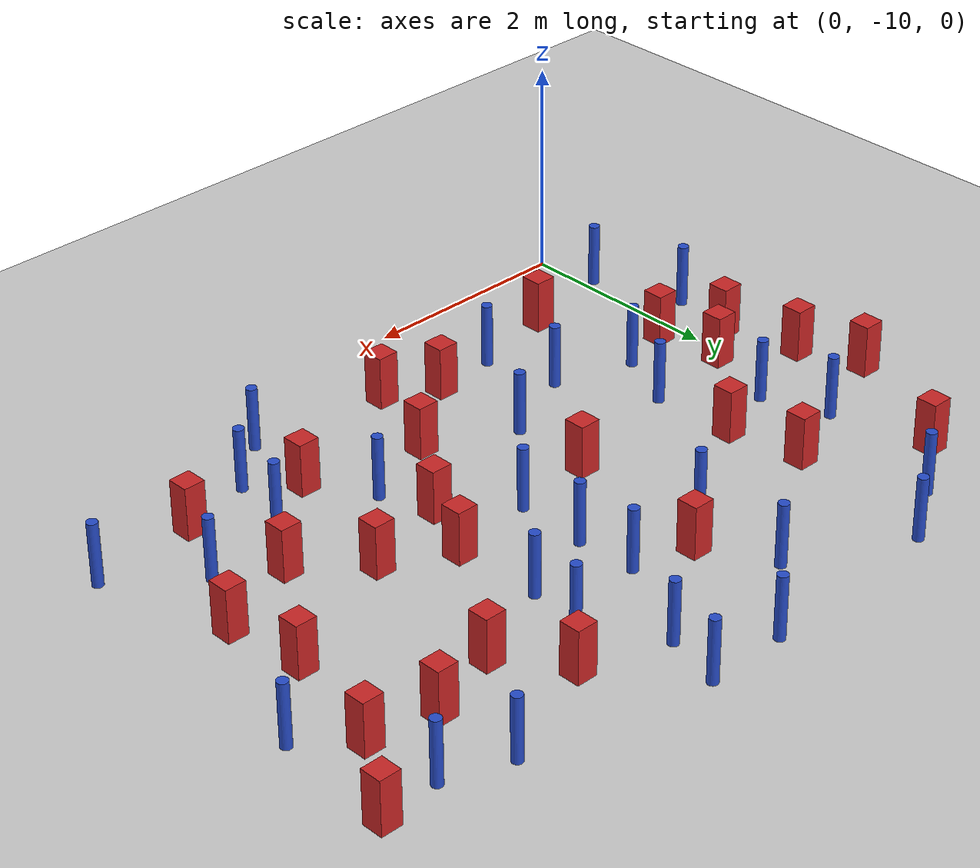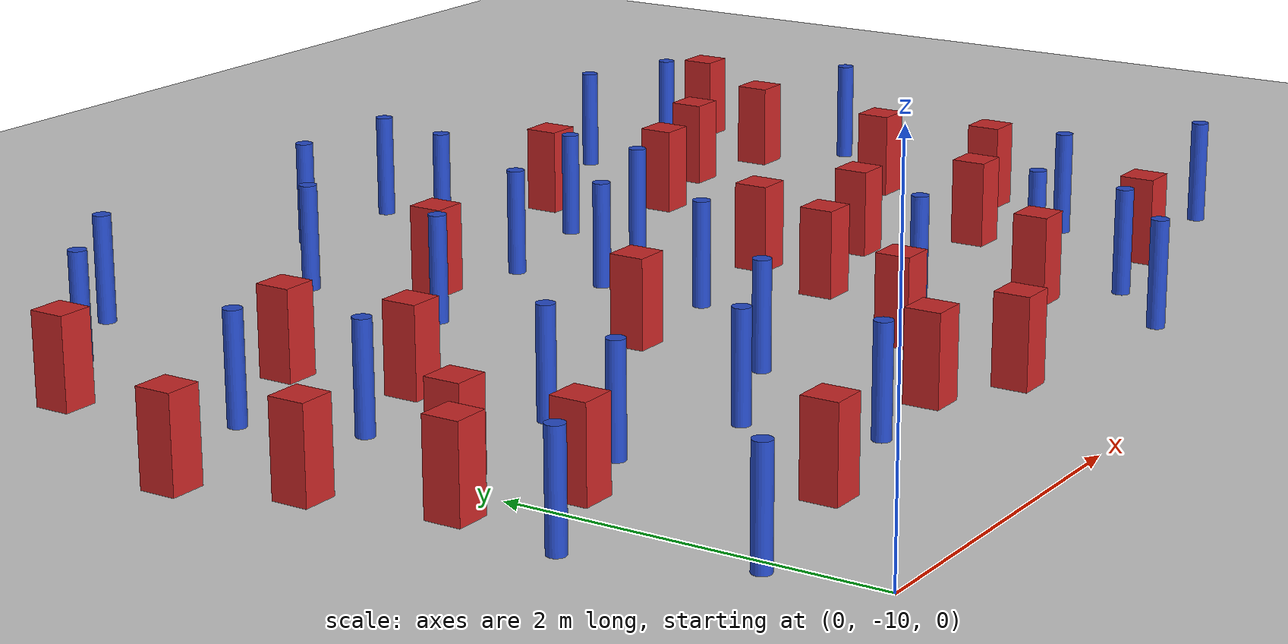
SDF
<sdf version="1.6">
 <world name="default">
  <model name="ground_plane">
   <static>1</static>
   <link name="link">
    <collision name="collision">
     <geometry><plane><normal>0 0 1</normal><size>100 100</size></plane></geometry>
     <surface><friction><ode><mu>100</mu><mu2>50</mu2></ode></friction></surface>
    </collision>
    <visual name="visual">
     <cast_shadows>0</cast_shadows>
     <geometry><plane><normal>0 0 1</normal><size>100 100</size></plane></geometry>
     <material>
      <ambient>1.0 1.0 1.0 1.0</ambient>
      <diffuse>0.8 0.8 0.8 1.0</diffuse>
      <specular>0.01 0.01 0.01 1.000000</specular>
     </material>
    </visual>
   </link>
  </model>
  <model name="square_post_obstacle3">
   <static>true</static>
   <pose>3.03924408986 -8.36852903713 8.22691968438e-08 7.22125133819e-06 -7.54495500217e-07 2.29674213826e-05</pose>
   <link name="link">
    <pose>0 0 0.25 0 -0 0</pose>
    <inertial>
     <mass>100</mass>
     <inertia>
      <ixx>0.166667</ixx>
      <ixy>0</ixy>
      <ixz>0</ixz>
      <iyy>0.166667</iyy>
      <iyz>0</iyz>
      <izz>0.166667</izz>
     </inertia>
    </inertial>
    <collision name="collision"><geometry><box><size>.2 .2 .5</size></box></geometry></collision>
    <visual name="visual">
     <geometry><box><size>.2 .2 .5</size></box></geometry>
     <material>
      <script><name>Gazebo/Red</name><uri>file://media/materials/scripts/gazebo.material</uri></script>
     </material>
    </visual>
   </link>
  </model>
  <model name="pole_obstacle4">
   <static>true</static>
   <pose>6.17533117742 -8.70427358856 2.88873142074e-08 -9.9053668967e-09 4.60219948993e-07 -1.20965994957e-07</pose>
   <link name="link">
    <pose>0 0 0.3 0 -0 0</pose>
    <inertial>
     <mass>1</mass>
     <inertia><ixx>0.145833</ixx><ixy>0</ixy><ixz>0</ixz><iyy>0.145833</iyy><iyz>0</iyz><izz>0.125</izz></inertia>
    </inertial>
    <collision name="collision">
     <geometry><cylinder><radius>0.05</radius><length>.6</length></cylinder></geometry>
    </collision>
    <visual name="visual">
     <geometry><cylinder><radius>0.05</radius><length>.6</length></cylinder></geometry>
     <material>
      <script><name>Gazebo/Blue</name><uri>file://media/materials/scripts/gazebo.material</uri></script>
     </material>
    </visual>
   </link>
  </model>
  <model name="square_post_obstacle22">
   <static>true</static>
   <pose>3.87121906777 -7.00000814342 8.22691968438e-08 7.2212513382e-06 -7.54495500217e-07 2.29674213826e-05</pose>
   <link name="link">
    <pose>0 0 0.25 0 -0 0</pose>
    <inertial>
     <mass>100</mass>
     <inertia>
      <ixx>0.166667</ixx>
      <ixy>0</ixy>
      <ixz>0</ixz>
      <iyy>0.166667</iyy>
      <iyz>0</iyz>
      <izz>0.166667</izz>
     </inertia>
    </inertial>
    <collision name="collision"><geometry><box><size>.2 .2 .5</size></box></geometry></collision>
    <visual name="visual">
     <geometry><box><size>.2 .2 .5</size></box></geometry>
     <material>
      <script><name>Gazebo/Red</name><uri>file://media/materials/scripts/gazebo.material</uri></script>
     </material>
    </visual>
   </link>
  </model>
  <model name="pole_obstacle20">
   <static>true</static>
   <pose>1.00768726413 -7.52704603365 2.88873142074e-08 -9.90536689905e-09 4.60219948988e-07 -1.20965994961e-07</pose>
   <link name="link">
    <pose>0 0 0.3 0 -0 0</pose>
    <inertial>
     <mass>1</mass>
     <inertia><ixx>0.145833</ixx><ixy>0</ixy><ixz>0</ixz><iyy>0.145833</iyy><iyz>0</iyz><izz>0.125</izz></inertia>
    </inertial>
    <collision name="collision">
     <geometry><cylinder><radius>0.05</radius><length>.6</length></cylinder></geometry>
    </collision>
    <visual name="visual">
     <geometry><cylinder><radius>0.05</radius><length>.6</length></cylinder></geometry>
     <material>
      <script><name>Gazebo/Blue</name><uri>file://media/materials/scripts/gazebo.material</uri></script>
     </material>
    </visual>
   </link>
  </model>
  <model name="pole_obstacle24">
   <static>true</static>
   <pose>1.46840488879 -8.35134403687 2.88873142074e-08 -9.90536690474e-09 4.60219948974e-07 -1.2096599497e-07</pose>
   <link name="link">
    <pose>0 0 0.3 0 -0 0</pose>
    <inertial>
     <mass>1</mass>
     <inertia><ixx>0.145833</ixx><ixy>0</ixy><ixz>0</ixz><iyy>0.145833</iyy><iyz>0</iyz><izz>0.125</izz></inertia>
    </inertial>
    <collision name="collision">
     <geometry><cylinder><radius>0.05</radius><length>.6</length></cylinder></geometry>
    </collision>
    <visual name="visual">
     <geometry><cylinder><radius>0.05</radius><length>.6</length></cylinder></geometry>
     <material>
      <script><name>Gazebo/Blue</name><uri>file://media/materials/scripts/gazebo.material</uri></script>
     </material>
    </visual>
   </link>
  </model>
  <model name="pole_obstacle33">
   <static>true</static>
   <pose>2.13817950077 -5.12578874878 2.88873142074e-08 -9.90536689859e-09 4.60219948989e-07 -1.20965994961e-07</pose>
   <link name="link">
    <pose>0 0 0.3 0 -0 0</pose>
    <inertial>
     <mass>1</mass>
     <inertia><ixx>0.145833</ixx><ixy>0</ixy><ixz>0</ixz><iyy>0.145833</iyy><iyz>0</iyz><izz>0.125</izz></inertia>
    </inertial>
    <collision name="collision">
     <geometry><cylinder><radius>0.05</radius><length>.6</length></cylinder></geometry>
    </collision>
    <visual name="visual">
     <geometry><cylinder><radius>0.05</radius><length>.6</length></cylinder></geometry>
     <material>
      <script><name>Gazebo/Blue</name><uri>file://media/materials/scripts/gazebo.material</uri></script>
     </material>
    </visual>
   </link>
  </model>
  <model name="square_post_obstacle37">
   <static>true</static>
   <pose>6.00536220626 -5.7125130079 8.22691968438e-08 7.22125133819e-06 -7.54495500217e-07 2.29674213826e-05</pose>
   <link name="link">
    <pose>0 0 0.25 0 -0 0</pose>
    <inertial>
     <mass>100</mass>
     <inertia>
      <ixx>0.166667</ixx>
      <ixy>0</ixy>
      <ixz>0</ixz>
      <iyy>0.166667</iyy>
      <iyz>0</iyz>
      <izz>0.166667</izz>
     </inertia>
    </inertial>
    <collision name="collision"><geometry><box><size>.2 .2 .5</size></box></geometry></collision>
    <visual name="visual">
     <geometry><box><size>.2 .2 .5</size></box></geometry>
     <material>
      <script><name>Gazebo/Red</name><uri>file://media/materials/scripts/gazebo.material</uri></script>
     </material>
    </visual>
   </link>
  </model>
  <model name="square_post_obstacle39">
   <static>true</static>
   <pose>5.3751287836 -5.60700710761 8.22691968438e-08 7.2212513382e-06 -7.54495500217e-07 2.29674213826e-05</pose>
   <link name="link">
    <pose>0 0 0.25 0 -0 0</pose>
    <inertial>
     <mass>100</mass>
     <inertia>
      <ixx>0.166667</ixx>
      <ixy>0</ixy>
      <ixz>0</ixz>
      <iyy>0.166667</iyy>
      <iyz>0</iyz>
      <izz>0.166667</izz>
     </inertia>
    </inertial>
    <collision name="collision"><geometry><box><size>.2 .2 .5</size></box></geometry></collision>
    <visual name="visual">
     <geometry><box><size>.2 .2 .5</size></box></geometry>
     <material>
      <script><name>Gazebo/Red</name><uri>file://media/materials/scripts/gazebo.material</uri></script>
     </material>
    </visual>
   </link>
  </model>
  <model name="pole_obstacle42">
   <static>true</static>
   <pose>1.64181586977 -9.03019632135 2.88873142074e-08 -9.90536690474e-09 4.60219948974e-07 -1.2096599497e-07</pose>
   <link name="link">
    <pose>0 0 0.3 0 -0 0</pose>
    <inertial>
     <mass>1</mass>
     <inertia><ixx>0.145833</ixx><ixy>0</ixy><ixz>0</ixz><iyy>0.145833</iyy><iyz>0</iyz><izz>0.125</izz></inertia>
    </inertial>
    <collision name="collision">
     <geometry><cylinder><radius>0.05</radius><length>.6</length></cylinder></geometry>
    </collision>
    <visual name="visual">
     <geometry><cylinder><radius>0.05</radius><length>.6</length></cylinder></geometry>
     <material>
      <script><name>Gazebo/Blue</name><uri>file://media/materials/scripts/gazebo.material</uri></script>
     </material>
    </visual>
   </link>
  </model>
  <model name="pole_obstacle45">
   <static>true</static>
   <pose>2.02770374783 -6.10496417202 2.88873142074e-08 -9.90536689932e-09 4.60219948987e-07 -1.20965994962e-07</pose>
   <link name="link">
    <pose>0 0 0.3 0 -0 0</pose>
    <inertial>
     <mass>1</mass>
     <inertia><ixx>0.145833</ixx><ixy>0</ixy><ixz>0</ixz><iyy>0.145833</iyy><iyz>0</iyz><izz>0.125</izz></inertia>
    </inertial>
    <collision name="collision">
     <geometry><cylinder><radius>0.05</radius><length>.6</length></cylinder></geometry>
    </collision>
    <visual name="visual">
     <geometry><cylinder><radius>0.05</radius><length>.6</length></cylinder></geometry>
     <material>
      <script><name>Gazebo/Blue</name><uri>file://media/materials/scripts/gazebo.material</uri></script>
     </material>
    </visual>
   </link>
  </model>
  <model name="square_post_obstacle44">
   <static>true</static>
   <pose>2.26150238405 -8.96020316031 8.22691968438e-08 7.22125133819e-06 -7.54495500217e-07 2.29674213826e-05</pose>
   <link name="link">
    <pose>0 0 0.25 0 -0 0</pose>
    <inertial>
     <mass>100</mass>
     <inertia>
      <ixx>0.166667</ixx>
      <ixy>0</ixy>
      <ixz>0</ixz>
      <iyy>0.166667</iyy>
      <iyz>0</iyz>
      <izz>0.166667</izz>
     </inertia>
    </inertial>
    <collision name="collision"><geometry><box><size>.2 .2 .5</size></box></geometry></collision>
    <visual name="visual">
     <geometry><box><size>.2 .2 .5</size></box></geometry>
     <material>
      <script><name>Gazebo/Red</name><uri>file://media/materials/scripts/gazebo.material</uri></script>
     </material>
    </visual>
   </link>
  </model>
  <model name="pole_obstacle54">
   <static>true</static>
   <pose>3.88679253072 -5.6816226948 2.88873142074e-08 -9.90536689859e-09 4.60219948989e-07 -1.20965994961e-07</pose>
   <link name="link">
    <pose>0 0 0.3 0 -0 0</pose>
    <inertial>
     <mass>1</mass>
     <inertia><ixx>0.145833</ixx><ixy>0</ixy><ixz>0</ixz><iyy>0.145833</iyy><iyz>0</iyz><izz>0.125</izz></inertia>
    </inertial>
    <collision name="collision">
     <geometry><cylinder><radius>0.05</radius><length>.6</length></cylinder></geometry>
    </collision>
    <visual name="visual">
     <geometry><cylinder><radius>0.05</radius><length>.6</length></cylinder></geometry>
     <material>
      <script><name>Gazebo/Blue</name><uri>file://media/materials/scripts/gazebo.material</uri></script>
     </material>
    </visual>
   </link>
  </model>
  <model name="square_post_obstacle60">
   <static>true</static>
   <pose>2.73865519787 -9.20706449146 8.22691968438e-08 7.22125133819e-06 -7.54495500217e-07 2.29674213826e-05</pose>
   <link name="link">
    <pose>0 0 0.25 0 -0 0</pose>
    <inertial>
     <mass>100</mass>
     <inertia>
      <ixx>0.166667</ixx>
      <ixy>0</ixy>
      <ixz>0</ixz>
      <iyy>0.166667</iyy>
      <iyz>0</iyz>
      <izz>0.166667</izz>
     </inertia>
    </inertial>
    <collision name="collision"><geometry><box><size>.2 .2 .5</size></box></geometry></collision>
    <visual name="visual">
     <geometry><box><size>.2 .2 .5</size></box></geometry>
     <material>
      <script><name>Gazebo/Red</name><uri>file://media/materials/scripts/gazebo.material</uri></script>
     </material>
    </visual>
   </link>
  </model>
  <model name="pole_obstacle56">
   <static>true</static>
   <pose>4.49932723782 -8.97264514142 2.88873142074e-08 -9.9053668967e-09 4.60219948993e-07 -1.20965994957e-07</pose>
   <link name="link">
    <pose>0 0 0.3 0 -0 0</pose>
    <inertial>
     <mass>1</mass>
     <inertia><ixx>0.145833</ixx><ixy>0</ixy><ixz>0</ixz><iyy>0.145833</iyy><iyz>0</iyz><izz>0.125</izz></inertia>
    </inertial>
    <collision name="collision">
     <geometry><cylinder><radius>0.05</radius><length>.6</length></cylinder></geometry>
    </collision>
    <visual name="visual">
     <geometry><cylinder><radius>0.05</radius><length>.6</length></cylinder></geometry>
     <material>
      <script><name>Gazebo/Blue</name><uri>file://media/materials/scripts/gazebo.material</uri></script>
     </material>
    </visual>
   </link>
  </model>
  <model name="pole_obstacle61">
   <static>true</static>
   <pose>3.0576063091 -6.46515845533 2.88873142074e-08 -9.90536689859e-09 4.60219948989e-07 -1.20965994961e-07</pose>
   <link name="link">
    <pose>0 0 0.3 0 -0 0</pose>
    <inertial>
     <mass>1</mass>
     <inertia><ixx>0.145833</ixx><ixy>0</ixy><ixz>0</ixz><iyy>0.145833</iyy><iyz>0</iyz><izz>0.125</izz></inertia>
    </inertial>
    <collision name="collision">
     <geometry><cylinder><radius>0.05</radius><length>.6</length></cylinder></geometry>
    </collision>
    <visual name="visual">
     <geometry><cylinder><radius>0.05</radius><length>.6</length></cylinder></geometry>
     <material>
      <script><name>Gazebo/Blue</name><uri>file://media/materials/scripts/gazebo.material</uri></script>
     </material>
    </visual>
   </link>
  </model>
  <model name="square_post_obstacle64">
   <static>true</static>
   <pose>0.13785745638 -7.62946731471 8.22691968438e-08 7.22125133819e-06 -7.54495500217e-07 2.29674213826e-05</pose>
   <link name="link">
    <pose>0 0 0.25 0 -0 0</pose>
    <inertial>
     <mass>100</mass>
     <inertia>
      <ixx>0.166667</ixx>
      <ixy>0</ixy>
      <ixz>0</ixz>
      <iyy>0.166667</iyy>
      <iyz>0</iyz>
      <izz>0.166667</izz>
     </inertia>
    </inertial>
    <collision name="collision"><geometry><box><size>.2 .2 .5</size></box></geometry></collision>
    <visual name="visual">
     <geometry><box><size>.2 .2 .5</size></box></geometry>
     <material>
      <script><name>Gazebo/Red</name><uri>file://media/materials/scripts/gazebo.material</uri></script>
     </material>
    </visual>
   </link>
  </model>
  <model name="square_post_obstacle70">
   <static>true</static>
   <pose>4.46884256452 -7.31322806914 8.22691968438e-08 7.22125133819e-06 -7.54495500217e-07 2.29674213826e-05</pose>
   <link name="link">
    <pose>0 0 0.25 0 -0 0</pose>
    <inertial>
     <mass>100</mass>
     <inertia>
      <ixx>0.166667</ixx>
      <ixy>0</ixy>
      <ixz>0</ixz>
      <iyy>0.166667</iyy>
      <iyz>0</iyz>
      <izz>0.166667</izz>
     </inertia>
    </inertial>
    <collision name="collision"><geometry><box><size>.2 .2 .5</size></box></geometry></collision>
    <visual name="visual">
     <geometry><box><size>.2 .2 .5</size></box></geometry>
     <material>
      <script><name>Gazebo/Red</name><uri>file://media/materials/scripts/gazebo.material</uri></script>
     </material>
    </visual>
   </link>
  </model>
  <model name="pole_obstacle72">
   <static>true</static>
   <pose>4.61226041288 -8.38763881548 2.88873142074e-08 -9.9053668967e-09 4.60219948993e-07 -1.20965994957e-07</pose>
   <link name="link">
    <pose>0 0 0.3 0 -0 0</pose>
    <inertial>
     <mass>1</mass>
     <inertia><ixx>0.145833</ixx><ixy>0</ixy><ixz>0</ixz><iyy>0.145833</iyy><iyz>0</iyz><izz>0.125</izz></inertia>
    </inertial>
    <collision name="collision">
     <geometry><cylinder><radius>0.05</radius><length>.6</length></cylinder></geometry>
    </collision>
    <visual name="visual">
     <geometry><cylinder><radius>0.05</radius><length>.6</length></cylinder></geometry>
     <material>
      <script><name>Gazebo/Blue</name><uri>file://media/materials/scripts/gazebo.material</uri></script>
     </material>
    </visual>
   </link>
  </model>
  <model name="pole_obstacle78">
   <static>true</static>
   <pose>3.03389448796 -7.13780780403 2.88873142074e-08 -9.90536689859e-09 4.60219948989e-07 -1.20965994961e-07</pose>
   <link name="link">
    <pose>0 0 0.3 0 -0 0</pose>
    <inertial>
     <mass>1</mass>
     <inertia><ixx>0.145833</ixx><ixy>0</ixy><ixz>0</ixz><iyy>0.145833</iyy><iyz>0</iyz><izz>0.125</izz></inertia>
    </inertial>
    <collision name="collision">
     <geometry><cylinder><radius>0.05</radius><length>.6</length></cylinder></geometry>
    </collision>
    <visual name="visual">
     <geometry><cylinder><radius>0.05</radius><length>.6</length></cylinder></geometry>
     <material>
      <script><name>Gazebo/Blue</name><uri>file://media/materials/scripts/gazebo.material</uri></script>
     </material>
    </visual>
   </link>
  </model>
  <model name="pole_obstacle85">
   <static>true</static>
   <pose>1.06284633595 -4.59662732369 2.88873142074e-08 -9.90536689852e-09 4.60219948989e-07 -1.2096599496e-07</pose>
   <link name="link">
    <pose>0 0 0.3 0 -0 0</pose>
    <inertial>
     <mass>1</mass>
     <inertia><ixx>0.145833</ixx><ixy>0</ixy><ixz>0</ixz><iyy>0.145833</iyy><iyz>0</iyz><izz>0.125</izz></inertia>
    </inertial>
    <collision name="collision">
     <geometry><cylinder><radius>0.05</radius><length>.6</length></cylinder></geometry>
    </collision>
    <visual name="visual">
     <geometry><cylinder><radius>0.05</radius><length>.6</length></cylinder></geometry>
     <material>
      <script><name>Gazebo/Blue</name><uri>file://media/materials/scripts/gazebo.material</uri></script>
     </material>
    </visual>
   </link>
  </model>
  <model name="square_post_obstacle82">
   <static>true</static>
   <pose>0.988675905571 -6.72240071054 8.22691968438e-08 7.22125133819e-06 -7.54495500217e-07 2.29674213826e-05</pose>
   <link name="link">
    <pose>0 0 0.25 0 -0 0</pose>
    <inertial>
     <mass>100</mass>
     <inertia>
      <ixx>0.166667</ixx>
      <ixy>0</ixy>
      <ixz>0</ixz>
      <iyy>0.166667</iyy>
      <iyz>0</iyz>
      <izz>0.166667</izz>
     </inertia>
    </inertial>
    <collision name="collision"><geometry><box><size>.2 .2 .5</size></box></geometry></collision>
    <visual name="visual">
     <geometry><box><size>.2 .2 .5</size></box></geometry>
     <material>
      <script><name>Gazebo/Red</name><uri>file://media/materials/scripts/gazebo.material</uri></script>
     </material>
    </visual>
   </link>
  </model>
  <model name="pole_obstacle94">
   <static>true</static>
   <pose>5.33106441233 -4.83644539661 2.88873142074e-08 -9.90536690842e-09 4.60219948965e-07 -1.20965994976e-07</pose>
   <link name="link">
    <pose>0 0 0.3 0 -0 0</pose>
    <inertial>
     <mass>1</mass>
     <inertia><ixx>0.145833</ixx><ixy>0</ixy><ixz>0</ixz><iyy>0.145833</iyy><iyz>0</iyz><izz>0.125</izz></inertia>
    </inertial>
    <collision name="collision">
     <geometry><cylinder><radius>0.05</radius><length>.6</length></cylinder></geometry>
    </collision>
    <visual name="visual">
     <geometry><cylinder><radius>0.05</radius><length>.6</length></cylinder></geometry>
     <material>
      <script><name>Gazebo/Blue</name><uri>file://media/materials/scripts/gazebo.material</uri></script>
     </material>
    </visual>
   </link>
  </model>
  <model name="pole_obstacle96">
   <static>true</static>
   <pose>0.134923675828 -6.31454646709 2.88873142074e-08 -9.90536689843e-09 4.60219948989e-07 -1.20965994962e-07</pose>
   <link name="link">
    <pose>0 0 0.3 0 -0 0</pose>
    <inertial>
     <mass>1</mass>
     <inertia><ixx>0.145833</ixx><ixy>0</ixy><ixz>0</ixz><iyy>0.145833</iyy><iyz>0</iyz><izz>0.125</izz></inertia>
    </inertial>
    <collision name="collision">
     <geometry><cylinder><radius>0.05</radius><length>.6</length></cylinder></geometry>
    </collision>
    <visual name="visual">
     <geometry><cylinder><radius>0.05</radius><length>.6</length></cylinder></geometry>
     <material>
      <script><name>Gazebo/Blue</name><uri>file://media/materials/scripts/gazebo.material</uri></script>
     </material>
    </visual>
   </link>
  </model>
  <model name="square_post_obstacle86">
   <static>true</static>
   <pose>4.3009350154 -5.2447729062 8.22691968438e-08 7.22125133819e-06 -7.54495500217e-07 2.29674213826e-05</pose>
   <link name="link">
    <pose>0 0 0.25 0 -0 0</pose>
    <inertial>
     <mass>100</mass>
     <inertia>
      <ixx>0.166667</ixx>
      <ixy>0</ixy>
      <ixz>0</ixz>
      <iyy>0.166667</iyy>
      <iyz>0</iyz>
      <izz>0.166667</izz>
     </inertia>
    </inertial>
    <collision name="collision"><geometry><box><size>.2 .2 .5</size></box></geometry></collision>
    <visual name="visual">
     <geometry><box><size>.2 .2 .5</size></box></geometry>
     <material>
      <script><name>Gazebo/Red</name><uri>file://media/materials/scripts/gazebo.material</uri></script>
     </material>
    </visual>
   </link>
  </model>
  <model name="pole_obstacle105">
   <static>true</static>
   <pose>0.72998128741 -8.11903229184 2.88873142074e-08 -9.90536690779e-09 4.60219948967e-07 -1.20965994975e-07</pose>
   <link name="link">
    <pose>0 0 0.3 0 -0 0</pose>
    <inertial>
     <mass>1</mass>
     <inertia><ixx>0.145833</ixx><ixy>0</ixy><ixz>0</ixz><iyy>0.145833</iyy><iyz>0</iyz><izz>0.125</izz></inertia>
    </inertial>
    <collision name="collision">
     <geometry><cylinder><radius>0.05</radius><length>.6</length></cylinder></geometry>
    </collision>
    <visual name="visual">
     <geometry><cylinder><radius>0.05</radius><length>.6</length></cylinder></geometry>
     <material>
      <script><name>Gazebo/Blue</name><uri>file://media/materials/scripts/gazebo.material</uri></script>
     </material>
    </visual>
   </link>
  </model>
  <model name="square_post_obstacle95">
   <static>true</static>
   <pose>6.4901177541 -4.98791907107 8.22691968438e-08 7.22125133819e-06 -7.54495500217e-07 2.29674213826e-05</pose>
   <link name="link">
    <pose>0 0 0.25 0 -0 0</pose>
    <inertial>
     <mass>100</mass>
     <inertia>
      <ixx>0.166667</ixx>
      <ixy>0</ixy>
      <ixz>0</ixz>
      <iyy>0.166667</iyy>
      <iyz>0</iyz>
      <izz>0.166667</izz>
     </inertia>
    </inertial>
    <collision name="collision"><geometry><box><size>.2 .2 .5</size></box></geometry></collision>
    <visual name="visual">
     <geometry><box><size>.2 .2 .5</size></box></geometry>
     <material>
      <script><name>Gazebo/Red</name><uri>file://media/materials/scripts/gazebo.material</uri></script>
     </material>
    </visual>
   </link>
  </model>
  <model name="pole_obstacle108">
   <static>true</static>
   <pose>3.64661929468 -4.47700757577 2.88873142074e-08 -9.90536689859e-09 4.60219948989e-07 -1.20965994961e-07</pose>
   <link name="link">
    <pose>0 0 0.3 0 -0 0</pose>
    <inertial>
     <mass>1</mass>
     <inertia><ixx>0.145833</ixx><ixy>0</ixy><ixz>0</ixz><iyy>0.145833</iyy><iyz>0</iyz><izz>0.125</izz></inertia>
    </inertial>
    <collision name="collision">
     <geometry><cylinder><radius>0.05</radius><length>.6</length></cylinder></geometry>
    </collision>
    <visual name="visual">
     <geometry><cylinder><radius>0.05</radius><length>.6</length></cylinder></geometry>
     <material>
      <script><name>Gazebo/Blue</name><uri>file://media/materials/scripts/gazebo.material</uri></script>
     </material>
    </visual>
   </link>
  </model>
  <model name="pole_obstacle112">
   <static>true</static>
   <pose>3.82083031487 -6.19992124194 2.88873142074e-08 -9.90536689859e-09 4.60219948989e-07 -1.20965994961e-07</pose>
   <link name="link">
    <pose>0 0 0.3 0 -0 0</pose>
    <inertial>
     <mass>1</mass>
     <inertia><ixx>0.145833</ixx><ixy>0</ixy><ixz>0</ixz><iyy>0.145833</iyy><iyz>0</iyz><izz>0.125</izz></inertia>
    </inertial>
    <collision name="collision">
     <geometry><cylinder><radius>0.05</radius><length>.6</length></cylinder></geometry>
    </collision>
    <visual name="visual">
     <geometry><cylinder><radius>0.05</radius><length>.6</length></cylinder></geometry>
     <material>
      <script><name>Gazebo/Blue</name><uri>file://media/materials/scripts/gazebo.material</uri></script>
     </material>
    </visual>
   </link>
  </model>
  <model name="pole_obstacle113">
   <static>true</static>
   <pose>2.87564227524 -4.49049422608 2.88873142074e-08 -9.90536689859e-09 4.60219948989e-07 -1.20965994961e-07</pose>
   <link name="link">
    <pose>0 0 0.3 0 -0 0</pose>
    <inertial>
     <mass>1</mass>
     <inertia><ixx>0.145833</ixx><ixy>0</ixy><ixz>0</ixz><iyy>0.145833</iyy><iyz>0</iyz><izz>0.125</izz></inertia>
    </inertial>
    <collision name="collision">
     <geometry><cylinder><radius>0.05</radius><length>.6</length></cylinder></geometry>
    </collision>
    <visual name="visual">
     <geometry><cylinder><radius>0.05</radius><length>.6</length></cylinder></geometry>
     <material>
      <script><name>Gazebo/Blue</name><uri>file://media/materials/scripts/gazebo.material</uri></script>
     </material>
    </visual>
   </link>
  </model>
  <model name="square_post_obstacle102">
   <static>true</static>
   <pose>0.830669546246 -9.20691593685 8.22691968438e-08 7.22125133819e-06 -7.54495500217e-07 2.29674213826e-05</pose>
   <link name="link">
    <pose>0 0 0.25 0 -0 0</pose>
    <inertial>
     <mass>100</mass>
     <inertia>
      <ixx>0.166667</ixx>
      <ixy>0</ixy>
      <ixz>0</ixz>
      <iyy>0.166667</iyy>
      <iyz>0</iyz>
      <izz>0.166667</izz>
     </inertia>
    </inertial>
    <collision name="collision"><geometry><box><size>.2 .2 .5</size></box></geometry></collision>
    <visual name="visual">
     <geometry><box><size>.2 .2 .5</size></box></geometry>
     <material>
      <script><name>Gazebo/Red</name><uri>file://media/materials/scripts/gazebo.material</uri></script>
     </material>
    </visual>
   </link>
  </model>
  <model name="square_post_obstacle108">
   <static>true</static>
   <pose>5.19240743871 -8.7805995124 8.22691968438e-08 7.22125133819e-06 -7.54495500217e-07 2.29674213826e-05</pose>
   <link name="link">
    <pose>0 0 0.25 0 -0 0</pose>
    <inertial>
     <mass>100</mass>
     <inertia>
      <ixx>0.166667</ixx>
      <ixy>0</ixy>
      <ixz>0</ixz>
      <iyy>0.166667</iyy>
      <iyz>0</iyz>
      <izz>0.166667</izz>
     </inertia>
    </inertial>
    <collision name="collision"><geometry><box><size>.2 .2 .5</size></box></geometry></collision>
    <visual name="visual">
     <geometry><box><size>.2 .2 .5</size></box></geometry>
     <material>
      <script><name>Gazebo/Red</name><uri>file://media/materials/scripts/gazebo.material</uri></script>
     </material>
    </visual>
   </link>
  </model>
  <model name="square_post_obstacle109">
   <static>true</static>
   <pose>5.74889730171 -6.74980237397 8.22691968438e-08 7.2212513382e-06 -7.54495500217e-07 2.29674213826e-05</pose>
   <link name="link">
    <pose>0 0 0.25 0 -0 0</pose>
    <inertial>
     <mass>100</mass>
     <inertia>
      <ixx>0.166667</ixx>
      <ixy>0</ixy>
      <ixz>0</ixz>
      <iyy>0.166667</iyy>
      <iyz>0</iyz>
      <izz>0.166667</izz>
     </inertia>
    </inertial>
    <collision name="collision"><geometry><box><size>.2 .2 .5</size></box></geometry></collision>
    <visual name="visual">
     <geometry><box><size>.2 .2 .5</size></box></geometry>
     <material>
      <script><name>Gazebo/Red</name><uri>file://media/materials/scripts/gazebo.material</uri></script>
     </material>
    </visual>
   </link>
  </model>
  <model name="pole_obstacle132">
   <static>true</static>
   <pose>0.48547676784 -4.97229546294 2.88873142074e-08 -9.90536689616e-09 4.60219948994e-07 -1.20965994955e-07</pose>
   <link name="link">
    <pose>0 0 0.3 0 -0 0</pose>
    <inertial>
     <mass>1</mass>
     <inertia><ixx>0.145833</ixx><ixy>0</ixy><ixz>0</ixz><iyy>0.145833</iyy><iyz>0</iyz><izz>0.125</izz></inertia>
    </inertial>
    <collision name="collision">
     <geometry><cylinder><radius>0.05</radius><length>.6</length></cylinder></geometry>
    </collision>
    <visual name="visual">
     <geometry><cylinder><radius>0.05</radius><length>.6</length></cylinder></geometry>
     <material>
      <script><name>Gazebo/Blue</name><uri>file://media/materials/scripts/gazebo.material</uri></script>
     </material>
    </visual>
   </link>
  </model>
  <model name="square_post_obstacle117">
   <static>true</static>
   <pose>4.12466969165 -8.62809714619 8.22691968438e-08 7.2212513382e-06 -7.54495500217e-07 2.29674213826e-05</pose>
   <link name="link">
    <pose>0 0 0.25 0 -0 0</pose>
    <inertial>
     <mass>100</mass>
     <inertia>
      <ixx>0.166667</ixx>
      <ixy>0</ixy>
      <ixz>0</ixz>
      <iyy>0.166667</iyy>
      <iyz>0</iyz>
      <izz>0.166667</izz>
     </inertia>
    </inertial>
    <collision name="collision"><geometry><box><size>.2 .2 .5</size></box></geometry></collision>
    <visual name="visual">
     <geometry><box><size>.2 .2 .5</size></box></geometry>
     <material>
      <script><name>Gazebo/Red</name><uri>file://media/materials/scripts/gazebo.material</uri></script>
     </material>
    </visual>
   </link>
  </model>
  <model name="pole_obstacle139">
   <static>true</static>
   <pose>5.92331666803 -5.04353802926 2.88873142074e-08 -9.90536690842e-09 4.60219948965e-07 -1.20965994976e-07</pose>
   <link name="link">
    <pose>0 0 0.3 0 -0 0</pose>
    <inertial>
     <mass>1</mass>
     <inertia><ixx>0.145833</ixx><ixy>0</ixy><ixz>0</ixz><iyy>0.145833</iyy><iyz>0</iyz><izz>0.125</izz></inertia>
    </inertial>
    <collision name="collision">
     <geometry><cylinder><radius>0.05</radius><length>.6</length></cylinder></geometry>
    </collision>
    <visual name="visual">
     <geometry><cylinder><radius>0.05</radius><length>.6</length></cylinder></geometry>
     <material>
      <script><name>Gazebo/Blue</name><uri>file://media/materials/scripts/gazebo.material</uri></script>
     </material>
    </visual>
   </link>
  </model>
  <model name="square_post_obstacle126">
   <static>true</static>
   <pose>-0.0760050665379 -5.38943267146 8.22691968438e-08 7.2212513382e-06 -7.54495500217e-07 2.29674213826e-05</pose>
   <link name="link">
    <pose>0 0 0.25 0 -0 0</pose>
    <inertial>
     <mass>100</mass>
     <inertia>
      <ixx>0.166667</ixx>
      <ixy>0</ixy>
      <ixz>0</ixz>
      <iyy>0.166667</iyy>
      <iyz>0</iyz>
      <izz>0.166667</izz>
     </inertia>
    </inertial>
    <collision name="collision"><geometry><box><size>.2 .2 .5</size></box></geometry></collision>
    <visual name="visual">
     <geometry><box><size>.2 .2 .5</size></box></geometry>
     <material>
      <script><name>Gazebo/Red</name><uri>file://media/materials/scripts/gazebo.material</uri></script>
     </material>
    </visual>
   </link>
  </model>
  <model name="square_post_obstacle133">
   <static>true</static>
   <pose>5.01786813371 -7.79206211531 8.22691968438e-08 7.22125133819e-06 -7.54495500217e-07 2.29674213826e-05</pose>
   <link name="link">
    <pose>0 0 0.25 0 -0 0</pose>
    <inertial>
     <mass>100</mass>
     <inertia>
      <ixx>0.166667</ixx>
      <ixy>0</ixy>
      <ixz>0</ixz>
      <iyy>0.166667</iyy>
      <iyz>0</iyz>
      <izz>0.166667</izz>
     </inertia>
    </inertial>
    <collision name="collision"><geometry><box><size>.2 .2 .5</size></box></geometry></collision>
    <visual name="visual">
     <geometry><box><size>.2 .2 .5</size></box></geometry>
     <material>
      <script><name>Gazebo/Red</name><uri>file://media/materials/scripts/gazebo.material</uri></script>
     </material>
    </visual>
   </link>
  </model>
  <model name="pole_obstacle150">
   <static>true</static>
   <pose>6.41487442027 -6.12156884239 2.88873142074e-08 -9.90536690842e-09 4.60219948965e-07 -1.20965994976e-07</pose>
   <link name="link">
    <pose>0 0 0.3 0 -0 0</pose>
    <inertial>
     <mass>1</mass>
     <inertia><ixx>0.145833</ixx><ixy>0</ixy><ixz>0</ixz><iyy>0.145833</iyy><iyz>0</iyz><izz>0.125</izz></inertia>
    </inertial>
    <collision name="collision">
     <geometry><cylinder><radius>0.05</radius><length>.6</length></cylinder></geometry>
    </collision>
    <visual name="visual">
     <geometry><cylinder><radius>0.05</radius><length>.6</length></cylinder></geometry>
     <material>
      <script><name>Gazebo/Blue</name><uri>file://media/materials/scripts/gazebo.material</uri></script>
     </material>
    </visual>
   </link>
  </model>
  <model name="square_post_obstacle147">
   <static>true</static>
   <pose>2.27708167283 -7.21297509862 8.22691968438e-08 7.2212513382e-06 -7.54495500217e-07 2.29674213826e-05</pose>
   <link name="link">
    <pose>0 0 0.25 0 -0 0</pose>
    <inertial>
     <mass>100</mass>
     <inertia>
      <ixx>0.166667</ixx>
      <ixy>0</ixy>
      <ixz>0</ixz>
      <iyy>0.166667</iyy>
      <iyz>0</iyz>
      <izz>0.166667</izz>
     </inertia>
    </inertial>
    <collision name="collision"><geometry><box><size>.2 .2 .5</size></box></geometry></collision>
    <visual name="visual">
     <geometry><box><size>.2 .2 .5</size></box></geometry>
     <material>
      <script><name>Gazebo/Red</name><uri>file://media/materials/scripts/gazebo.material</uri></script>
     </material>
    </visual>
   </link>
  </model>
  <model name="pole_obstacle168">
   <static>true</static>
   <pose>4.01677246106 -9.39399598992 2.88873142074e-08 -9.90536689822e-09 4.6021994899e-07 -1.2096599496e-07</pose>
   <link name="link">
    <pose>0 0 0.3 0 -0 0</pose>
    <inertial>
     <mass>1</mass>
     <inertia><ixx>0.145833</ixx><ixy>0</ixy><ixz>0</ixz><iyy>0.145833</iyy><iyz>0</iyz><izz>0.125</izz></inertia>
    </inertial>
    <collision name="collision">
     <geometry><cylinder><radius>0.05</radius><length>.6</length></cylinder></geometry>
    </collision>
    <visual name="visual">
     <geometry><cylinder><radius>0.05</radius><length>.6</length></cylinder></geometry>
     <material>
      <script><name>Gazebo/Blue</name><uri>file://media/materials/scripts/gazebo.material</uri></script>
     </material>
    </visual>
   </link>
  </model>
  <model name="pole_obstacle175">
   <static>true</static>
   <pose>5.48577495172 -8.13598408935 2.88873142074e-08 -9.9053668967e-09 4.60219948993e-07 -1.20965994957e-07</pose>
   <link name="link">
    <pose>0 0 0.3 0 -0 0</pose>
    <inertial>
     <mass>1</mass>
     <inertia><ixx>0.145833</ixx><ixy>0</ixy><ixz>0</ixz><iyy>0.145833</iyy><iyz>0</iyz><izz>0.125</izz></inertia>
    </inertial>
    <collision name="collision">
     <geometry><cylinder><radius>0.05</radius><length>.6</length></cylinder></geometry>
    </collision>
    <visual name="visual">
     <geometry><cylinder><radius>0.05</radius><length>.6</length></cylinder></geometry>
     <material>
      <script><name>Gazebo/Blue</name><uri>file://media/materials/scripts/gazebo.material</uri></script>
     </material>
    </visual>
   </link>
  </model>
  <model name="pole_obstacle178">
   <static>true</static>
   <pose>2.23201665201 -8.0048151395 2.88873142074e-08 -9.90536691401e-09 4.60219948952e-07 -1.20965994985e-07</pose>
   <link name="link">
    <pose>0 0 0.3 0 -0 0</pose>
    <inertial>
     <mass>1</mass>
     <inertia><ixx>0.145833</ixx><ixy>0</ixy><ixz>0</ixz><iyy>0.145833</iyy><iyz>0</iyz><izz>0.125</izz></inertia>
    </inertial>
    <collision name="collision">
     <geometry><cylinder><radius>0.05</radius><length>.6</length></cylinder></geometry>
    </collision>
    <visual name="visual">
     <geometry><cylinder><radius>0.05</radius><length>.6</length></cylinder></geometry>
     <material>
      <script><name>Gazebo/Blue</name><uri>file://media/materials/scripts/gazebo.material</uri></script>
     </material>
    </visual>
   </link>
  </model>
  <model name="square_post_obstacle169">
   <static>true</static>
   <pose>-0.672322305439 -6.62042945814 8.22691968438e-08 7.2212513382e-06 -7.54495500217e-07 2.29674213826e-05</pose>
   <link name="link">
    <pose>0 0 0.25 0 -0 0</pose>
    <inertial>
     <mass>100</mass>
     <inertia>
      <ixx>0.166667</ixx>
      <ixy>0</ixy>
      <ixz>0</ixz>
      <iyy>0.166667</iyy>
      <iyz>0</iyz>
      <izz>0.166667</izz>
     </inertia>
    </inertial>
    <collision name="collision"><geometry><box><size>.2 .2 .5</size></box></geometry></collision>
    <visual name="visual">
     <geometry><box><size>.2 .2 .5</size></box></geometry>
     <material>
      <script><name>Gazebo/Red</name><uri>file://media/materials/scripts/gazebo.material</uri></script>
     </material>
    </visual>
   </link>
  </model>
  <model name="pole_obstacle182">
   <static>true</static>
   <pose>0.356215888451 -6.92443143798 2.88873142074e-08 -9.90536689683e-09 4.60219948993e-07 -1.20965994957e-07</pose>
   <link name="link">
    <pose>0 0 0.3 0 -0 0</pose>
    <inertial>
     <mass>1</mass>
     <inertia><ixx>0.145833</ixx><ixy>0</ixy><ixz>0</ixz><iyy>0.145833</iyy><iyz>0</iyz><izz>0.125</izz></inertia>
    </inertial>
    <collision name="collision">
     <geometry><cylinder><radius>0.05</radius><length>.6</length></cylinder></geometry>
    </collision>
    <visual name="visual">
     <geometry><cylinder><radius>0.05</radius><length>.6</length></cylinder></geometry>
     <material>
      <script><name>Gazebo/Blue</name><uri>file://media/materials/scripts/gazebo.material</uri></script>
     </material>
    </visual>
   </link>
  </model>
  <model name="pole_obstacle186">
   <static>true</static>
   <pose>-0.396986662772 -8.56425294966 2.88873142074e-08 -9.90536691079e-09 4.6021994896e-07 -1.2096599498e-07</pose>
   <link name="link">
    <pose>0 0 0.3 0 -0 0</pose>
    <inertial>
     <mass>1</mass>
     <inertia><ixx>0.145833</ixx><ixy>0</ixy><ixz>0</ixz><iyy>0.145833</iyy><iyz>0</iyz><izz>0.125</izz></inertia>
    </inertial>
    <collision name="collision">
     <geometry><cylinder><radius>0.05</radius><length>.6</length></cylinder></geometry>
    </collision>
    <visual name="visual">
     <geometry><cylinder><radius>0.05</radius><length>.6</length></cylinder></geometry>
     <material>
      <script><name>Gazebo/Blue</name><uri>file://media/materials/scripts/gazebo.material</uri></script>
     </material>
    </visual>
   </link>
  </model>
  <model name="square_post_obstacle173">
   <static>true</static>
   <pose>2.48090655326 -5.7471873837 8.22691968438e-08 7.2212513382e-06 -7.54495500217e-07 2.29674213826e-05</pose>
   <link name="link">
    <pose>0 0 0.25 0 -0 0</pose>
    <inertial>
     <mass>100</mass>
     <inertia>
      <ixx>0.166667</ixx>
      <ixy>0</ixy>
      <ixz>0</ixz>
      <iyy>0.166667</iyy>
      <iyz>0</iyz>
      <izz>0.166667</izz>
     </inertia>
    </inertial>
    <collision name="collision"><geometry><box><size>.2 .2 .5</size></box></geometry></collision>
    <visual name="visual">
     <geometry><box><size>.2 .2 .5</size></box></geometry>
     <material>
      <script><name>Gazebo/Red</name><uri>file://media/materials/scripts/gazebo.material</uri></script>
     </material>
    </visual>
   </link>
  </model>
  <model name="square_post_obstacle179">
   <static>true</static>
   <pose>0.227593269263 -8.26297739648 8.22691968438e-08 7.22125133819e-06 -7.54495500217e-07 2.29674213826e-05</pose>
   <link name="link">
    <pose>0 0 0.25 0 -0 0</pose>
    <inertial>
     <mass>100</mass>
     <inertia>
      <ixx>0.166667</ixx>
      <ixy>0</ixy>
      <ixz>0</ixz>
      <iyy>0.166667</iyy>
      <iyz>0</iyz>
      <izz>0.166667</izz>
     </inertia>
    </inertial>
    <collision name="collision"><geometry><box><size>.2 .2 .5</size></box></geometry></collision>
    <visual name="visual">
     <geometry><box><size>.2 .2 .5</size></box></geometry>
     <material>
      <script><name>Gazebo/Red</name><uri>file://media/materials/scripts/gazebo.material</uri></script>
     </material>
    </visual>
   </link>
  </model>
  <model name="pole_obstacle197">
   <static>true</static>
   <pose>3.02669284406 -5.90193217847 2.88873142074e-08 -9.90536689859e-09 4.60219948989e-07 -1.20965994961e-07</pose>
   <link name="link">
    <pose>0 0 0.3 0 -0 0</pose>
    <inertial>
     <mass>1</mass>
     <inertia><ixx>0.145833</ixx><ixy>0</ixy><ixz>0</ixz><iyy>0.145833</iyy><iyz>0</iyz><izz>0.125</izz></inertia>
    </inertial>
    <collision name="collision">
     <geometry><cylinder><radius>0.05</radius><length>.6</length></cylinder></geometry>
    </collision>
    <visual name="visual">
     <geometry><cylinder><radius>0.05</radius><length>.6</length></cylinder></geometry>
     <material>
      <script><name>Gazebo/Blue</name><uri>file://media/materials/scripts/gazebo.material</uri></script>
     </material>
    </visual>
   </link>
  </model>
  <model name="square_post_obstacle192">
   <static>true</static>
   <pose>3.61643576114 -7.57507875703 8.22691968438e-08 7.2212513382e-06 -7.54495500217e-07 2.29674213826e-05</pose>
   <link name="link">
    <pose>0 0 0.25 0 -0 0</pose>
    <inertial>
     <mass>100</mass>
     <inertia>
      <ixx>0.166667</ixx>
      <ixy>0</ixy>
      <ixz>0</ixz>
      <iyy>0.166667</iyy>
      <iyz>0</iyz>
      <izz>0.166667</izz>
     </inertia>
    </inertial>
    <collision name="collision"><geometry><box><size>.2 .2 .5</size></box></geometry></collision>
    <visual name="visual">
     <geometry><box><size>.2 .2 .5</size></box></geometry>
     <material>
      <script><name>Gazebo/Red</name><uri>file://media/materials/scripts/gazebo.material</uri></script>
     </material>
    </visual>
   </link>
  </model>
  <model name="square_post_obstacle196">
   <static>true</static>
   <pose>4.68623576248 -5.8259007068 8.22691968438e-08 7.2212513382e-06 -7.54495500217e-07 2.29674213826e-05</pose>
   <link name="link">
    <pose>0 0 0.25 0 -0 0</pose>
    <inertial>
     <mass>100</mass>
     <inertia>
      <ixx>0.166667</ixx>
      <ixy>0</ixy>
      <ixz>0</ixz>
      <iyy>0.166667</iyy>
      <iyz>0</iyz>
      <izz>0.166667</izz>
     </inertia>
    </inertial>
    <collision name="collision"><geometry><box><size>.2 .2 .5</size></box></geometry></collision>
    <visual name="visual">
     <geometry><box><size>.2 .2 .5</size></box></geometry>
     <material>
      <script><name>Gazebo/Red</name><uri>file://media/materials/scripts/gazebo.material</uri></script>
     </material>
    </visual>
   </link>
  </model>
  <model name="square_post_obstacle197">
   <static>true</static>
   <pose>0.865716833064 -6.01806460604 8.22691968438e-08 7.2212513382e-06 -7.54495500217e-07 2.29674213826e-05</pose>
   <link name="link">
    <pose>0 0 0.25 0 -0 0</pose>
    <inertial>
     <mass>100</mass>
     <inertia>
      <ixx>0.166667</ixx>
      <ixy>0</ixy>
      <ixz>0</ixz>
      <iyy>0.166667</iyy>
      <iyz>0</iyz>
      <izz>0.166667</izz>
     </inertia>
    </inertial>
    <collision name="collision"><geometry><box><size>.2 .2 .5</size></box></geometry></collision>
    <visual name="visual">
     <geometry><box><size>.2 .2 .5</size></box></geometry>
     <material>
      <script><name>Gazebo/Red</name><uri>file://media/materials/scripts/gazebo.material</uri></script>
     </material>
    </visual>
   </link>
  </model>
  <model name="square_post_obstacle198">
   <static>true</static>
   <pose>-0.456332528365 -7.2136142154 8.22691968438e-08 7.22125133819e-06 -7.54495500217e-07 2.29674213826e-05</pose>
   <link name="link">
    <pose>0 0 0.25 0 -0 0</pose>
    <inertial>
     <mass>100</mass>
     <inertia>
      <ixx>0.166667</ixx>
      <ixy>0</ixy>
      <ixz>0</ixz>
      <iyy>0.166667</iyy>
      <iyz>0</iyz>
      <izz>0.166667</izz>
     </inertia>
    </inertial>
    <collision name="collision"><geometry><box><size>.2 .2 .5</size></box></geometry></collision>
    <visual name="visual">
     <geometry><box><size>.2 .2 .5</size></box></geometry>
     <material>
      <script><name>Gazebo/Red</name><uri>file://media/materials/scripts/gazebo.material</uri></script>
     </material>
    </visual>
   </link>
  </model>
  <model name="square_post_obstacle205">
   <static>true</static>
   <pose>5.83482919059 -7.47219863038 8.22691968438e-08 7.2212513382e-06 -7.54495500217e-07 2.29674213826e-05</pose>
   <link name="link">
    <pose>0 0 0.25 0 -0 0</pose>
    <inertial>
     <mass>100</mass>
     <inertia>
      <ixx>0.166667</ixx>
      <ixy>0</ixy>
      <ixz>0</ixz>
      <iyy>0.166667</iyy>
      <iyz>0</iyz>
      <izz>0.166667</izz>
     </inertia>
    </inertial>
    <collision name="collision"><geometry><box><size>.2 .2 .5</size></box></geometry></collision>
    <visual name="visual">
     <geometry><box><size>.2 .2 .5</size></box></geometry>
     <material>
      <script><name>Gazebo/Red</name><uri>file://media/materials/scripts/gazebo.material</uri></script>
     </material>
    </visual>
   </link>
  </model>
  <model name="square_post_obstacle213">
   <static>true</static>
   <pose>-0.28088490762 -7.93703730608 8.22691968438e-08 7.2212513382e-06 -7.54495500217e-07 2.29674213826e-05</pose>
   <link name="link">
    <pose>0 0 0.25 0 -0 0</pose>
    <inertial>
     <mass>100</mass>
     <inertia>
      <ixx>0.166667</ixx>
      <ixy>0</ixy>
      <ixz>0</ixz>
      <iyy>0.166667</iyy>
      <iyz>0</iyz>
      <izz>0.166667</izz>
     </inertia>
    </inertial>
    <collision name="collision"><geometry><box><size>.2 .2 .5</size></box></geometry></collision>
    <visual name="visual">
     <geometry><box><size>.2 .2 .5</size></box></geometry>
     <material>
      <script><name>Gazebo/Red</name><uri>file://media/materials/scripts/gazebo.material</uri></script>
     </material>
    </visual>
   </link>
  </model>
  <model name="pole_obstacle223">
   <static>true</static>
   <pose>3.76694000913 -8.08873997959 2.88873142074e-08 -9.90536692318e-09 4.6021994893e-07 -1.20965994988e-07</pose>
   <link name="link">
    <pose>0 0 0.3 0 -0 0</pose>
    <inertial>
     <mass>1</mass>
     <inertia><ixx>0.145833</ixx><ixy>0</ixy><ixz>0</ixz><iyy>0.145833</iyy><iyz>0</iyz><izz>0.125</izz></inertia>
    </inertial>
    <collision name="collision">
     <geometry><cylinder><radius>0.05</radius><length>.6</length></cylinder></geometry>
    </collision>
    <visual name="visual">
     <geometry><cylinder><radius>0.05</radius><length>.6</length></cylinder></geometry>
     <material>
      <script><name>Gazebo/Blue</name><uri>file://media/materials/scripts/gazebo.material</uri></script>
     </material>
    </visual>
   </link>
  </model>
  <model name="pole_obstacle225">
   <static>true</static>
   <pose>-0.0964009908671 -9.41069997959 2.88873142074e-08 -9.90536690858e-09 4.60219948965e-07 -1.20965994977e-07</pose>
   <link name="link">
    <pose>0 0 0.3 0 -0 0</pose>
    <inertial>
     <mass>1</mass>
     <inertia><ixx>0.145833</ixx><ixy>0</ixy><ixz>0</ixz><iyy>0.145833</iyy><iyz>0</iyz><izz>0.125</izz></inertia>
    </inertial>
    <collision name="collision">
     <geometry><cylinder><radius>0.05</radius><length>.6</length></cylinder></geometry>
    </collision>
    <visual name="visual">
     <geometry><cylinder><radius>0.05</radius><length>.6</length></cylinder></geometry>
     <material>
      <script><name>Gazebo/Blue</name><uri>file://media/materials/scripts/gazebo.material</uri></script>
     </material>
    </visual>
   </link>
  </model>
  <model name="pole_obstacle229">
   <static>true</static>
   <pose>3.50080000913 -5.01667997959 2.88873142074e-08 -9.90536689859e-09 4.60219948989e-07 -1.20965994961e-07</pose>
   <link name="link">
    <pose>0 0 0.3 0 -0 0</pose>
    <inertial>
     <mass>1</mass>
     <inertia><ixx>0.145833</ixx><ixy>0</ixy><ixz>0</ixz><iyy>0.145833</iyy><iyz>0</iyz><izz>0.125</izz></inertia>
    </inertial>
    <collision name="collision">
     <geometry><cylinder><radius>0.05</radius><length>.6</length></cylinder></geometry>
    </collision>
    <visual name="visual">
     <geometry><cylinder><radius>0.05</radius><length>.6</length></cylinder></geometry>
     <material>
      <script><name>Gazebo/Blue</name><uri>file://media/materials/scripts/gazebo.material</uri></script>
     </material>
    </visual>
   </link>
  </model>
 </world>
</sdf>
